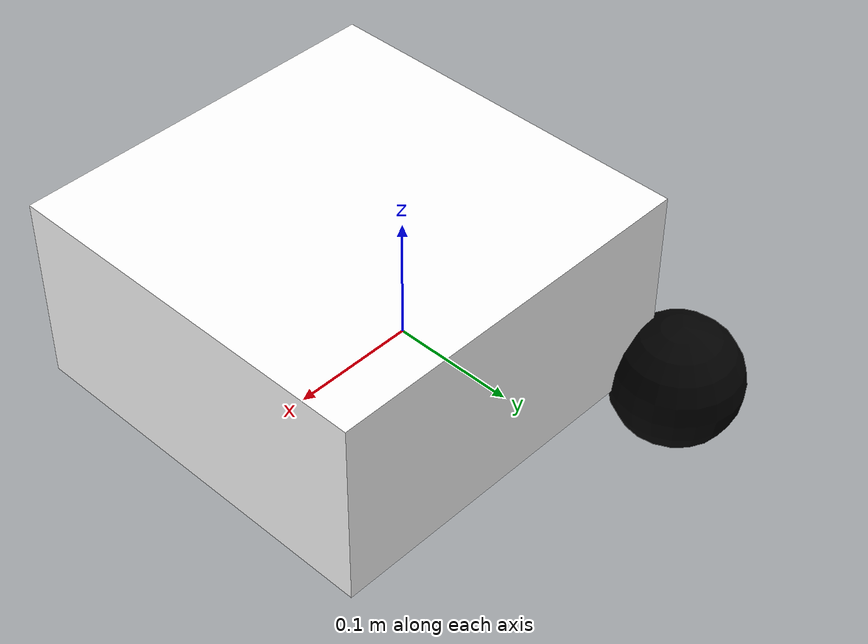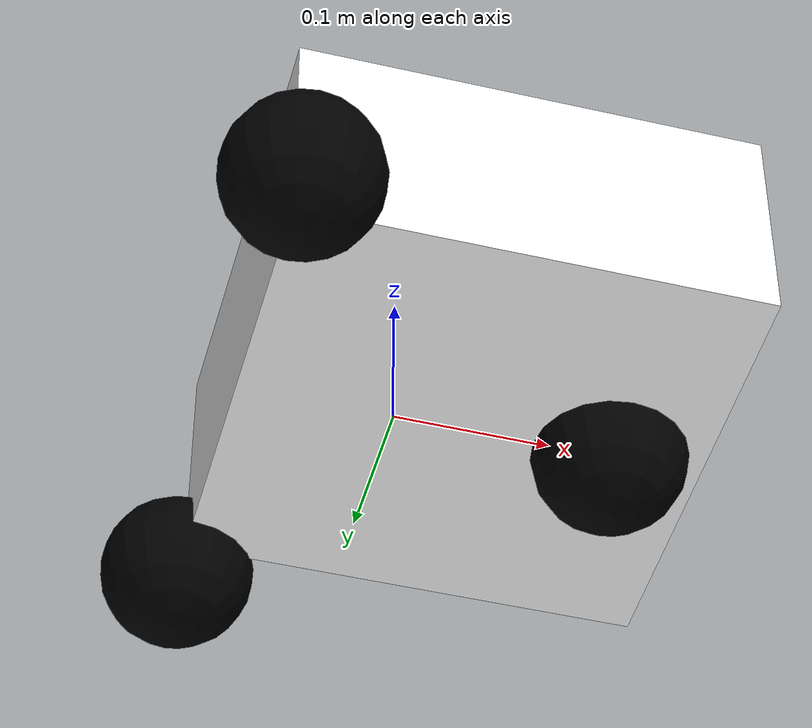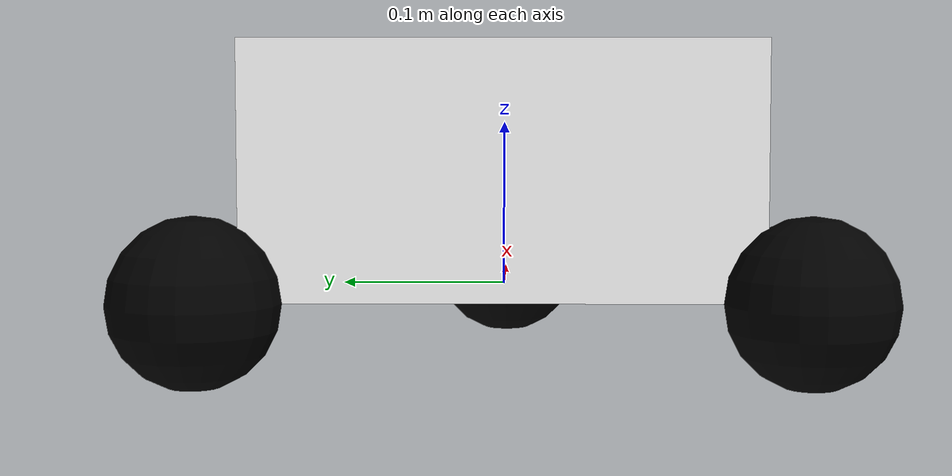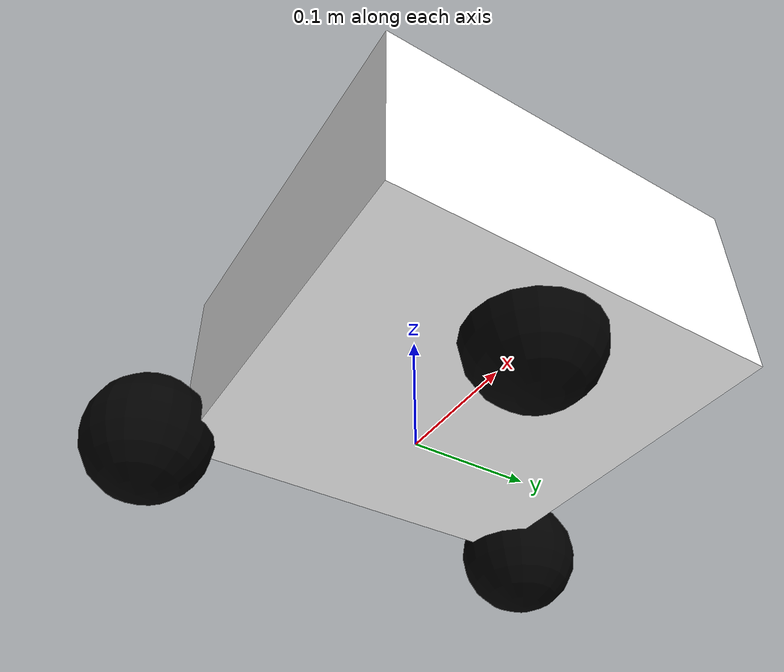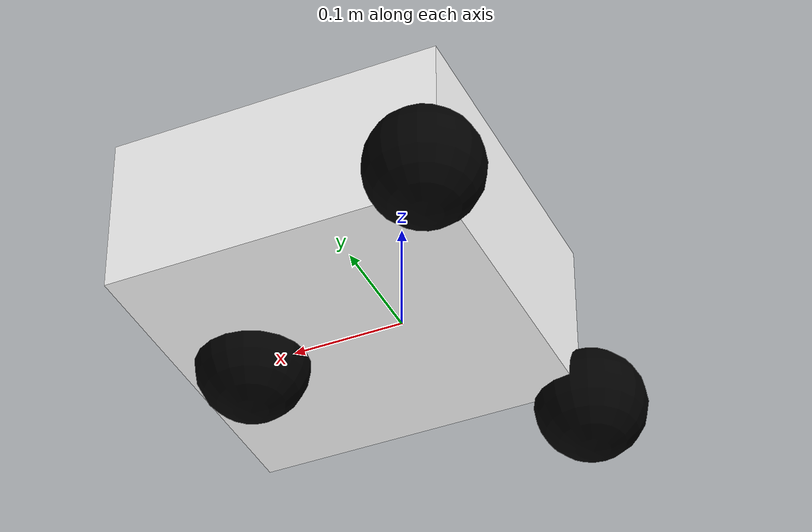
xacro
<?xml version="1.0"?>
<robot xmlns:xacro="http://www.ros.org/wiki/xacro">

    <xacro:include filename="inertial_macros.xacro" />
    <xacro:include filename="omni_wheel.urdf.xacro" />
    <xacro:include filename="gazebo_control.xacro" />

    <material name="white">
        <color rgba="1 1 1 1" />
    </material>

    <material name="orange">
        <color rgba="1 0.3 0.1 1" />
    </material>

    <material name="blue">
        <color rgba="0.2 0.2 1 1" />
    </material>

    <material name="black">
        <color rgba="0 0 0 1" />
    </material>

    <material name="red">
        <color rgba="1 0 0 1" />
    </material>

    <!-- BASE LINK-->

    <link name="base_link">

    </link>

    <!-- CHASSIS LINK-->

    <joint name="chassis_joint" type="fixed">
        <parent link="base_link" />
        <child link="chassis" />
        <origin xyz="-0.1 0 0" />
    </joint>

    <link name="chassis">
        <visual>
            <origin xyz="0.15 0 0.075" />
            <geometry>
                <box size="0.3 0.3 0.15" />
            </geometry>
            <material name="white" />
        </visual>
        <collision>
            <origin xyz="0.15 0 0.075" />
            <geometry>
                <box size="0.3 0.3 0.15" />
            </geometry>
        </collision>
        <xacro:inertial_box mass="0.5" x="0.3" y="0.3" z="0.15">
            <origin xyz="0.15 0 0.075" rpy="0 0 0" />
        </xacro:inertial_box>
    </link>

    <gazebo reference="chassis">
        <material>Gazebo/White</material>
    </gazebo>

    <!-- LEFT WHEEL LINK-->
    <xacro:macro name="robot">

        <xacro:omni_wheel prefix="wheel_1">
            <origin xyz="0 0.175 0" rpy="0 0 0" />
        </xacro:omni_wheel>

        <!-- RIGHT WHEEL LINK-->

        <xacro:omni_wheel prefix="wheel_2" >
            <origin xyz="0 -0.175 0" rpy="0 0 0" />
        </xacro:omni_wheel>

        <!-- FRONT WHEEL LINK-->
        <xacro:omni_wheel prefix="wheel_3" >
            <origin xyz="0.24 0 0" rpy="0 0 0" />
        </xacro:omni_wheel>

        <xacro:omni_steering />
    </xacro:macro>

    <xacro:robot />

</robot>

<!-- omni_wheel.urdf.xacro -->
<robot xmlns:xacro="http://www.ros.org/wiki/xacro" >

    <!-- OMNI WHEEL LINK -->
    <xacro:property name="wheel_radius" value="0.05" />

    <xacro:macro name="omni_wheel" params="prefix *origin">

        <joint name="${prefix}_wheel_joint" type="continuous">
            <parent link="chassis" />
            <child link="${prefix}_wheel" />
            <xacro:insert_block name="origin" />
            <axis xyz="0 0 0" rpy="0 0 0" />
            <limit effort="100" velocity="100" />
            <joint_properties damping="0.0" friction="0.0" />
        </joint>

        <link name="${prefix}_wheel">
            <visual>
                <geometry>
                    <sphere radius="${wheel_radius}" />
                </geometry>
                <material name="black" />
            </visual>
            <collision>
                <geometry>
                    <sphere radius="${wheel_radius}" />
                </geometry>
            </collision>
            <xacro:inertial_sphere mass="0.1" radius="0.05">
                <origin xyz="0 0 0" rpy="0 0 0" />
            </xacro:inertial_sphere>
        </link>

        <transmission name="${prefix}_wheel_joint_trans">
            <type>transmission_interface/SimpleTransmission</type>
            <joint name="${prefix}_wheel_joint">
                <hardwareInterface>hardware_interface/VelocityJointInterface</hardwareInterface>
            </joint>
            <actuator name="${prefix}_wheel_joint_motor">
                <mechanicalReduction>1</mechanicalReduction>
            </actuator>
        </transmission>

        <gazebo reference="${prefix}_wheel">
            <material>Gazebo/Black</material>
            <mu1 value="0.0"/>
            <mu2 value="0.0"/>
            <kp value="10000000.0" />
            <kd value="1.0" />
            <fdir1 value="1 0 0" />
            <turnGravityOff>false</turnGravityOff>
        </gazebo>

    </xacro:macro>
</robot>
